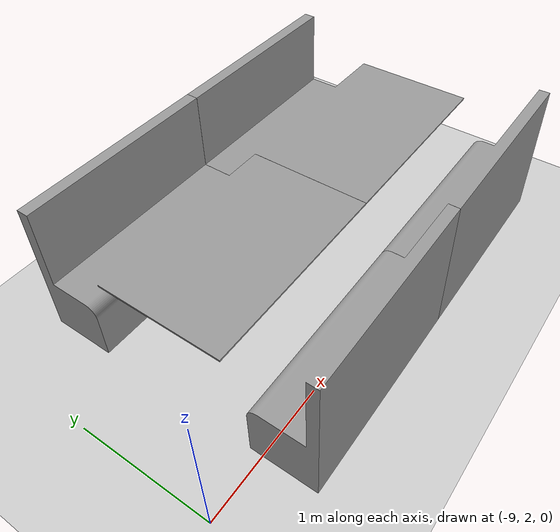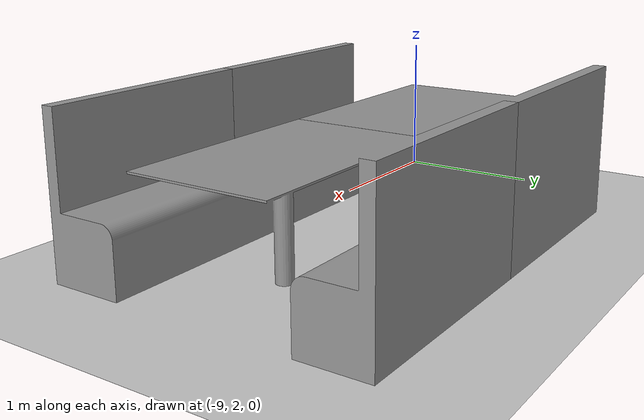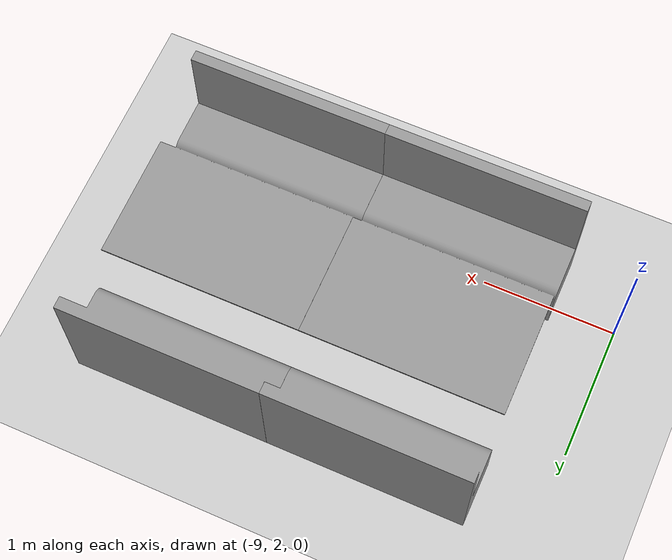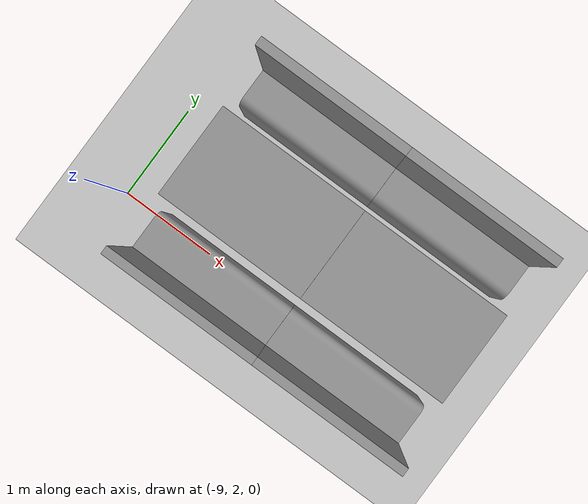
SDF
<sdf version="1.6">
 <world name="default">
  <model name="ground_plane">
   <static>1</static>
   <link name="link">
    <collision name="collision">
     <geometry><plane><normal>0 0 1</normal><size>100 100</size></plane></geometry>
     <surface><friction><ode><mu>100</mu><mu2>50</mu2></ode></friction></surface>
    </collision>
    <visual name="visual">
     <cast_shadows>0</cast_shadows>
     <geometry><plane><normal>0 0 1</normal><size>100 100</size></plane></geometry>
     <material>
      <script><uri>file://media/materials/scripts/gazebo.material</uri><name>Gazebo/Grey</name></script>
     </material>
    </visual>
   </link>
  </model>
  <model name="table_14">
   <link name="link_0">
    <inertial>
     <mass>1</mass>
     <inertia>
      <ixx>0.166667</ixx>
      <ixy>0</ixy>
      <ixz>0</ixz>
      <iyy>0.166667</iyy>
      <iyz>0</iyz>
      <izz>0.166667</izz>
     </inertia>
    </inertial>
    <visual name="visual">
     <pose>-1.9 -1.17 0 0 -0 0</pose>
     <geometry><mesh><uri>model://table/mesh/table.dae</uri><scale>0.6 0.6 0.6</scale></mesh></geometry>
     <material>
      <lighting>1</lighting>
      <script><uri>file://media/materials/scripts/gazebo.material</uri><name>Gazebo/Grey</name></script>
      <shader type="pixel"><normal_map>__default__</normal_map></shader>
      <ambient>0.3 0.3 0.3 1</ambient>
      <diffuse>0.7 0.7 0.7 1</diffuse>
      <specular>0.01 0.01 0.01 1</specular>
      <emissive>0 0 0 1</emissive>
     </material>
    </visual>
    <collision name="collision">
     <geometry><box><size>2.2 1.5 1.1</size></box></geometry>
     <surface>
      <friction>
       <ode><mu>1</mu><mu2>1</mu2><fdir1>0 0 0</fdir1><slip1>0</slip1><slip2>0</slip2></ode>
       <torsional>
        <coefficient>1</coefficient>
        <patch_radius>0</patch_radius>
        <surface_radius>0</surface_radius>
        <use_patch_radius>1</use_patch_radius>
        <ode><slip>0</slip></ode>
       </torsional>
      </friction>
      <bounce><restitution_coefficient>0</restitution_coefficient><threshold>1e+06</threshold></bounce>
      <contact>
       <collide_without_contact>0</collide_without_contact>
       <collide_without_contact_bitmask>1</collide_without_contact_bitmask>
       <collide_bitmask>1</collide_bitmask>
       <ode>
        <soft_cfm>0</soft_cfm>
        <soft_erp>0.2</soft_erp>
        <kp>1e+13</kp>
        <kd>1</kd>
        <max_vel>0.01</max_vel>
        <min_depth>0</min_depth>
       </ode>
       <bullet>
        <split_impulse>1</split_impulse>
        <split_impulse_penetration_threshold>-0.01</split_impulse_penetration_threshold>
        <soft_cfm>0</soft_cfm>
        <soft_erp>0.2</soft_erp>
        <kp>1e+13</kp>
        <kd>1</kd>
       </bullet>
      </contact>
     </surface>
    </collision>
   </link>
   <static>1</static>
   <pose>-6.29675 2.68796 0 0 -0 1.5708</pose>
  </model>
  <model name="table_16">
   <link name="link_0">
    <inertial>
     <mass>1</mass>
     <inertia>
      <ixx>0.166667</ixx>
      <ixy>0</ixy>
      <ixz>0</ixz>
      <iyy>0.166667</iyy>
      <iyz>0</iyz>
      <izz>0.166667</izz>
     </inertia>
    </inertial>
    <visual name="visual">
     <pose>-1.9 -1.17 0 0 -0 0</pose>
     <geometry><mesh><uri>model://table/mesh/table.dae</uri><scale>0.6 0.6 0.6</scale></mesh></geometry>
     <material>
      <lighting>1</lighting>
      <script><uri>file://media/materials/scripts/gazebo.material</uri><name>Gazebo/Grey</name></script>
      <shader type="pixel"><normal_map>__default__</normal_map></shader>
      <ambient>0.3 0.3 0.3 1</ambient>
      <diffuse>0.7 0.7 0.7 1</diffuse>
      <specular>0.01 0.01 0.01 1</specular>
      <emissive>0 0 0 1</emissive>
     </material>
    </visual>
    <collision name="collision">
     <geometry><box><size>2.2 1.5 1.1</size></box></geometry>
     <surface>
      <friction>
       <ode><mu>1</mu><mu2>1</mu2><fdir1>0 0 0</fdir1><slip1>0</slip1><slip2>0</slip2></ode>
       <torsional>
        <coefficient>1</coefficient>
        <patch_radius>0</patch_radius>
        <surface_radius>0</surface_radius>
        <use_patch_radius>1</use_patch_radius>
        <ode><slip>0</slip></ode>
       </torsional>
      </friction>
      <bounce><restitution_coefficient>0</restitution_coefficient><threshold>1e+06</threshold></bounce>
      <contact>
       <collide_without_contact>0</collide_without_contact>
       <collide_without_contact_bitmask>1</collide_without_contact_bitmask>
       <collide_bitmask>1</collide_bitmask>
       <ode>
        <soft_cfm>0</soft_cfm>
        <soft_erp>0.2</soft_erp>
        <kp>1e+13</kp>
        <kd>1</kd>
        <max_vel>0.01</max_vel>
        <min_depth>0</min_depth>
       </ode>
       <bullet>
        <split_impulse>1</split_impulse>
        <split_impulse_penetration_threshold>-0.01</split_impulse_penetration_threshold>
        <soft_cfm>0</soft_cfm>
        <soft_erp>0.2</soft_erp>
        <kp>1e+13</kp>
        <kd>1</kd>
       </bullet>
      </contact>
     </surface>
    </collision>
   </link>
   <static>1</static>
   <pose>-7.78258 2.6879 0 0 -0 1.5708</pose>
  </model>
 </world>
</sdf>
